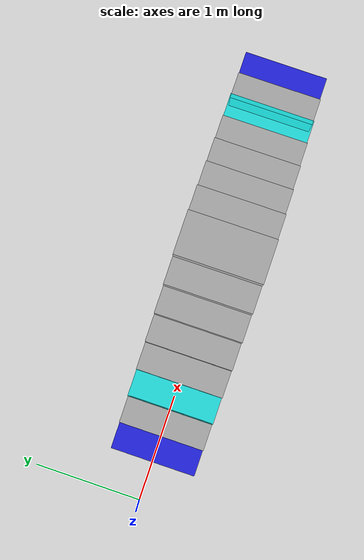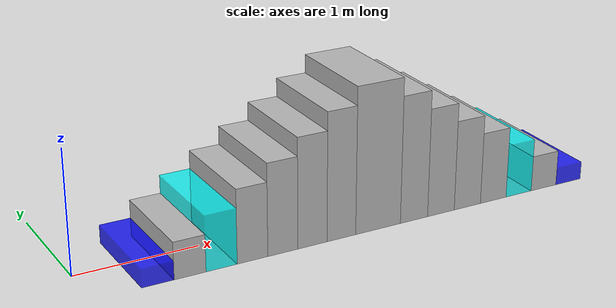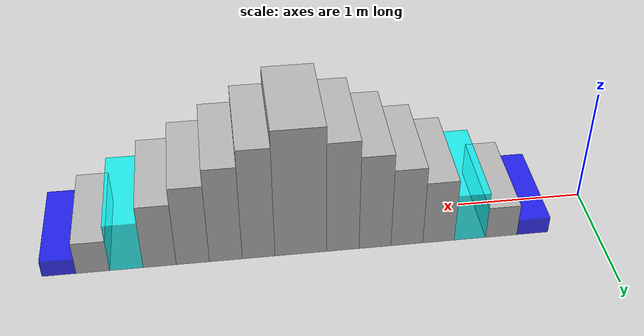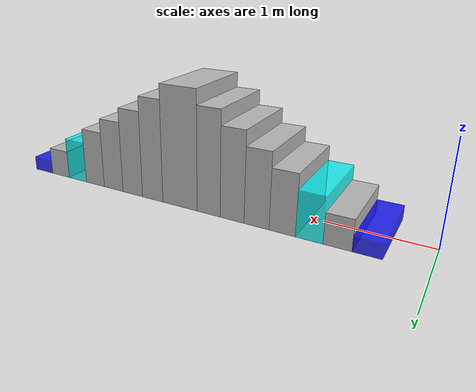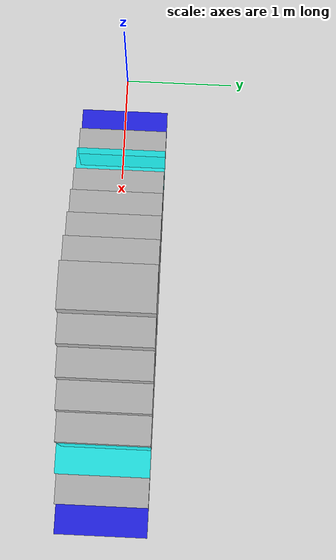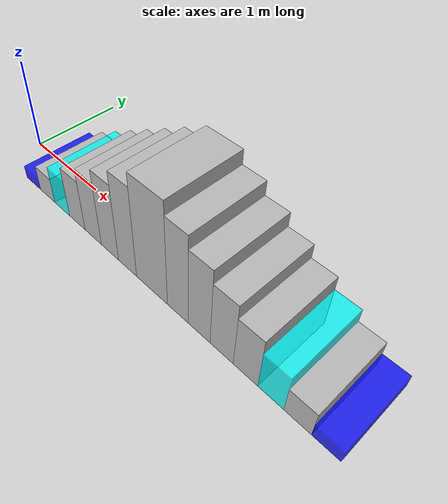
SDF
<sdf version='1.4'>
  <world name='terrain'>

    <model name='Box01'>
      <pose>0.50 0.0 0.075 0 0 0</pose>
      <link name='Box01'>
        <pose>0 0 0 0 0 0</pose>
        <collision name='collision'>
          <geometry>
            <box>
              <size>0.25 0.8 0.15</size>
            </box>
          </geometry>
        </collision>
        <visual name='visual'>
          <geometry>
            <box>
              <size>0.25 0.8 0.15</size>
            </box>
          </geometry>
          <material>
            <diffuse>0 0 1 .8</diffuse>
            <ambient>0 0 1 .8</ambient>
          </material>
        </visual>
      </link>
      <static>1</static>
    </model>

    <model name='Box02'>
      <pose>0.75 0.0 0.15 0 0 0</pose>
      <link name='Box02'>
        <pose>0 0 0 0 0 0</pose>
        <collision name='collision'>
          <geometry>
            <box>
              <size>0.25 0.8 0.30</size>
            </box>
          </geometry>
        </collision>
        <visual name='visual'>
          <geometry>
            <box>
              <size>0.25 0.8 0.30</size>
            </box>
          </geometry>
        </visual>
      </link>
      <static>1</static>
    </model>

    <model name='Box03'>
      <pose>1.00 0.0 0.225 0 0 0</pose>
      <link name='Box03'>
        <pose>0 0 0 0 0 0</pose>
        <collision name='collision'>
          <geometry>
            <box>
              <size>0.25 0.8 0.45</size>
            </box>
          </geometry>
        </collision>
        <visual name='visual'>
          <geometry>
            <box>
              <size>0.25 0.8 0.45</size>
            </box>
          </geometry>
          <material>
            <diffuse>0 1 1 .8</diffuse>
            <ambient>0 1 1 .8</ambient>
          </material>
        </visual>
      </link>
      <static>1</static>
    </model>

    <model name='Box04'>
      <pose>1.25 0.0 0.30 0 0 0</pose>
      <link name='Box04'>
        <pose>0 0 0 0 0 0</pose>
        <collision name='collision'>
          <geometry>
            <box>
              <size>0.25 0.8 0.60</size>
            </box>
          </geometry>
        </collision>
        <visual name='visual'>
          <geometry>
            <box>
              <size>0.25 0.8 0.60</size>
            </box>
          </geometry>
        </visual>
      </link>
      <static>1</static>
    </model>

    <model name='Box05'>
      <pose>1.50 0.0 0.375 0 0 0</pose>
      <link name='Box05'>
        <pose>0 0 0 0 0 0</pose>
        <collision name='collision'>
          <geometry>
            <box>
              <size>0.25 0.8 0.75</size>
            </box>
          </geometry>
        </collision>
        <visual name='visual'>
          <geometry>
            <box>
              <size>0.25 0.8 0.75</size>
            </box>
          </geometry>
        </visual>
      </link>
      <static>1</static>
    </model>

    <model name='Box06'>
      <pose>1.75 0.0 0.45 0 0 0</pose>
      <link name='Box06'>
        <pose>0 0 0 0 0 0</pose>
        <collision name='collision'>
          <geometry>
            <box>
              <size>0.25 0.8 0.90</size>
            </box>
          </geometry>
        </collision>
        <visual name='visual'>
          <geometry>
            <box>
              <size>0.25 0.8 0.90</size>
            </box>
          </geometry>
        </visual>
      </link>
      <static>1</static>
    </model>

    <model name='Box07'>
      <pose>2.00 0.0 0.525 0 0 0</pose>
      <link name='Box07'>
        <pose>0 0 0 0 0 0</pose>
        <collision name='collision'>
          <geometry>
            <box>
              <size>0.25 0.8 1.05</size>
            </box>
          </geometry>
        </collision>
        <visual name='visual'>
          <geometry>
            <box>
              <size>0.25 0.8 1.05</size>
            </box>
          </geometry>
        </visual>
      </link>
      <static>1</static>
    </model>

    <model name='Box08'>
      <pose>2.325 0.0 0.60 0 0 0</pose>
      <link name='Box08'>
        <pose>0 0 0 0 0 0</pose>
        <collision name='collision'>
          <geometry>
            <box>
              <size>0.40 0.8 1.20</size>
            </box>
          </geometry>
        </collision>
        <visual name='visual'>
          <geometry>
            <box>
              <size>0.40 0.8 1.20</size>
            </box>
          </geometry>
        </visual>
      </link>
      <static>1</static>
    </model>

    <model name='Box09'>
      <pose>2.65 0.0 0.525 0 0 0</pose>
      <link name='Box09'>
        <pose>0 0 0 0 0 0</pose>
        <collision name='collision'>
          <geometry>
            <box>
              <size>0.25 0.8 1.05</size>
            </box>
          </geometry>
        </collision>
        <visual name='visual'>
          <geometry>
            <box>
              <size>0.25 0.8 1.05</size>
            </box>
          </geometry>
        </visual>
      </link>
      <static>1</static>
    </model>

    <model name='Box10'>
      <pose>2.90 0.0 0.45 0 0 0</pose>
      <link name='Box10'>
        <pose>0 0 0 0 0 0</pose>
        <collision name='collision'>
          <geometry>
            <box>
              <size>0.25 0.8 0.90</size>
            </box>
          </geometry>
        </collision>
        <visual name='visual'>
          <geometry>
            <box>
              <size>0.25 0.8 0.90</size>
            </box>
          </geometry>
        </visual>
      </link>
      <static>1</static>
    </model>

    <model name='Box11'>
      <pose>3.15 0.0 0.375 0 0 0</pose>
      <link name='Box11'>
        <pose>0 0 0 0 0 0</pose>
        <collision name='collision'>
          <geometry>
            <box>
              <size>0.25 0.8 0.75</size>
            </box>
          </geometry>
        </collision>
        <visual name='visual'>
          <geometry>
            <box>
              <size>0.25 0.8 0.75</size>
            </box>
          </geometry>
        </visual>
      </link>
      <static>1</static>
    </model>

    <model name='Box12'>
      <pose>3.40 0.0 0.30 0 0 0</pose>
      <link name='Box12'>
        <pose>0 0 0 0 0 0</pose>
        <collision name='collision'>
          <geometry>
            <box>
              <size>0.25 0.8 0.60</size>
            </box>
          </geometry>
        </collision>
        <visual name='visual'>
          <geometry>
            <box>
              <size>0.25 0.8 0.60</size>
            </box>
          </geometry>
        </visual>
      </link>
      <static>1</static>
    </model>

    <model name='Box13'>
      <pose>3.65 0.0 0.225 0 0 0</pose>
      <link name='Box13'>
        <pose>0 0 0 0 0 0</pose>
        <collision name='collision'>
          <geometry>
            <box>
              <size>0.25 0.8 0.45</size>
            </box>
          </geometry>
        </collision>
        <visual name='visual'>
          <geometry>
            <box>
              <size>0.25 0.8 0.45</size>
            </box>
          </geometry>
          <material>
            <diffuse>0 1 1 .8</diffuse>
            <ambient>0 1 1 .8</ambient>
          </material>
        </visual>
      </link>
      <static>1</static>
    </model>

    <model name='Box14'>
      <pose>3.90 0.0 0.15 0 0 0</pose>
      <link name='Box14'>
        <pose>0 0 0 0 0 0</pose>
        <collision name='collision'>
          <geometry>
            <box>
              <size>0.25 0.8 0.30</size>
            </box>
          </geometry>
        </collision>
        <visual name='visual'>
          <geometry>
            <box>
              <size>0.25 0.8 0.30</size>
            </box>
          </geometry>
        </visual>
      </link>
      <static>1</static>
    </model>

    <model name='Box15'>
      <pose>4.15 0.0 0.075 0 0 0</pose>
      <link name='Box15'>
        <pose>0 0 0 0 0 0</pose>
        <collision name='collision'>
          <geometry>
            <box>
              <size>0.25 0.8 0.15</size>
            </box>
          </geometry>
        </collision>
        <visual name='visual'>
          <geometry>
            <box>
              <size>0.25 0.8 0.15</size>
            </box>
          </geometry>
          <material>
            <diffuse>0 0 1 .8</diffuse>
            <ambient>0 0 1 .8</ambient>
          </material>
        </visual>
      </link>
      <static>1</static>
    </model>

  </world>
</sdf>
